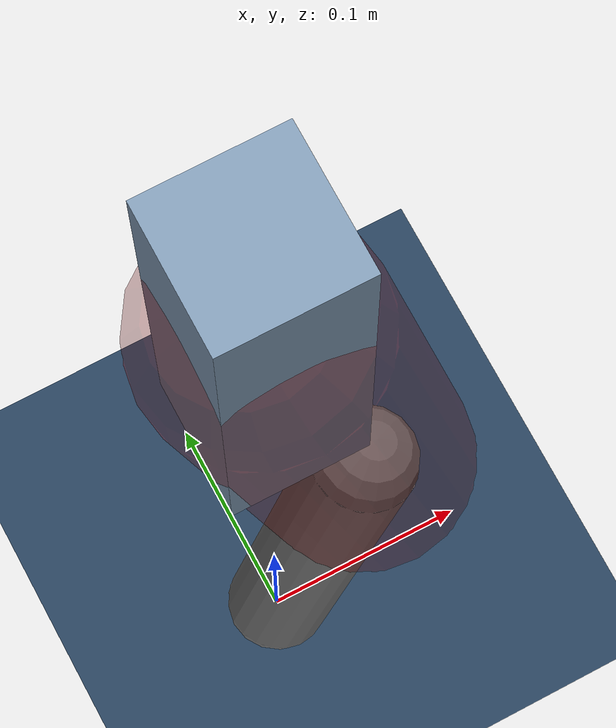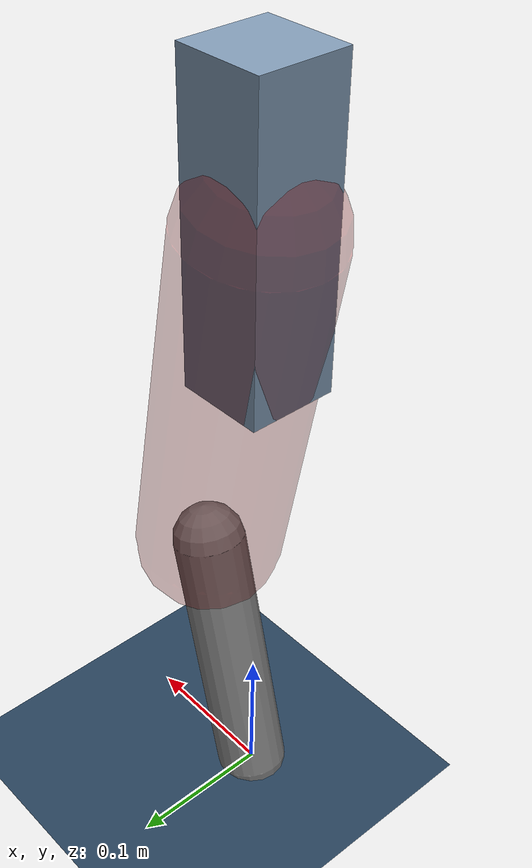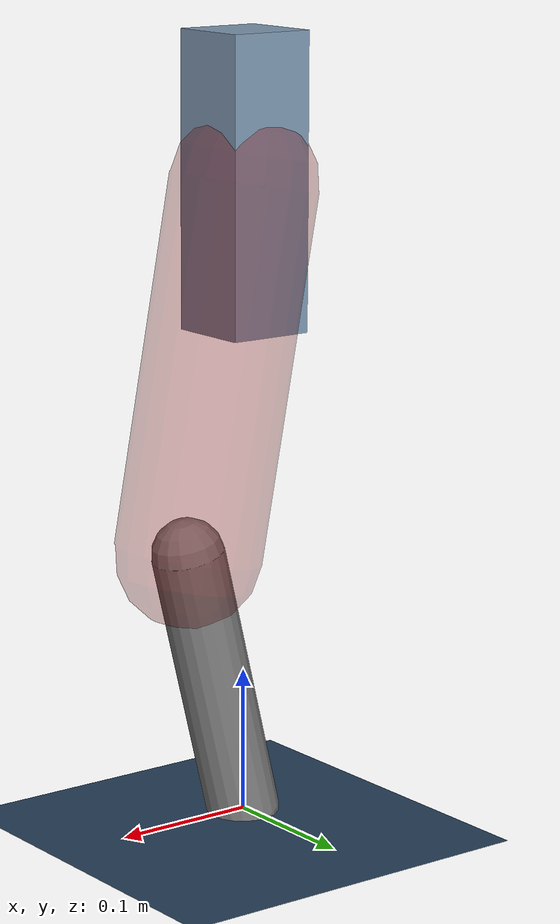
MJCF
<mujoco model="Hopper2D">
	<compiler inertiafromgeom="true" angle="radian" />
	<option timestep="0.001" integrator="implicit" cone="elliptic" solver="Newton" tolerance="1e-10" />

	<default>
		<geom contype="1" conaffinity="1" condim="3" friction="2 0.005 0.0001" solref="0.005 1" />
		<joint limited="true" damping="0.1" />
	</default>

	<asset>
		<texture name="skybox" type="skybox" builtin="gradient" rgb1=".4 .6 .8" rgb2="0 0 0" width="800" height="800" />
		<texture name="grid" type="2d" builtin="checker" rgb1=".1 .2 .3" rgb2=".2 .3 .4" width="300" height="300" mark="edge" markrgb=".2 .3 .4" />
		<material name="ground" texture="grid" texrepeat="1 1" texuniform="true" reflectance="0.1" />
		<material name="leg" rgba="0.5 0.6 0.7 1" />
	</asset>

	<worldbody>

		<geom name="floor" type="plane" size="5 5 0.25" material="ground" />

		<light directional="false" diffuse="0.8 0.8 0.8" specular="0.3 0.3 0.3" pos="0 0 2" dir="0 0 -1" />
		<light mode="targetbodycom" target="base" directional="false" diffuse="0.8 0.8 0.8" specular="0.3 0.3 0.3" pos="0 0 2" dir="0 0 -1" />

		<camera name="fixed" pos="0 -2 1" xyaxes="1 0 0 0 0 1" />
		<camera name="tracking" mode="trackcom" pos="0 -3 1" />

		<body name="root" pos="0 0 0.43585420015971643">
			<joint name="slide_x" type="slide" axis="1 0 0" range="-100 100" />
			<joint name="slide_z" type="slide" axis="0 0 1" range="0 10" />

			<body name="base" pos="0 0 0">
				<geom name="torso" type="box" size="0.03 0.03 0.1" mass="2.213" material="leg" />

				<body name="link1" pos="0 0 0" euler="0 1.3844468449849034 0">
					<joint type="hinge" axis="0 -1 0" pos="0 0 0" name="hinge1" limited="true" range="-3.14 3.14" stiffness="0" damping="0.1" />
					<geom name="thigh" type="capsule" fromto="0 0 0 0.25125781496690375 0 0" size="0.05" rgba="0.5 0 0 0.3" mass="0.8596703189139497" />

					<body name="link2" pos="0.25125781496690375 0 0" euler="0 0.427911382417193 0">
						<joint type="hinge" axis="0 -1 0" pos="0 0 0" name="hinge2" limited="true" range="-3.14 3.14" stiffness="0" damping="0.1" />
						<geom name="shank" type="capsule" fromto="0 0 0 0.19459638519281267 0 0" size="0.025" mass="0.39633674667353136" />

					</body>
				</body>
			</body>
		</body>
	</worldbody>

	<actuator>
		<motor name="torque1" joint="hinge1" ctrlrange="-57.04851303263083 57.04851303263083" ctrllimited="true" gear="1" />
		<motor name="torque2" joint="hinge2" ctrlrange="-88.90608214903023 88.90608214903023" ctrllimited="true" gear="1" />
	</actuator>
</mujoco>
